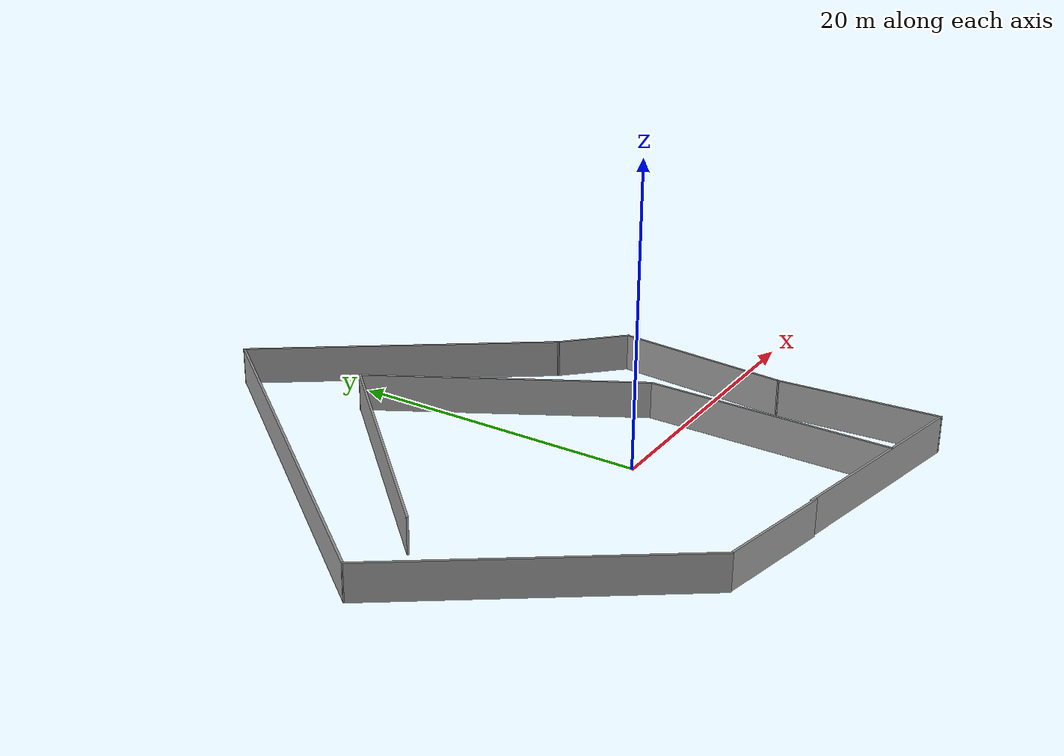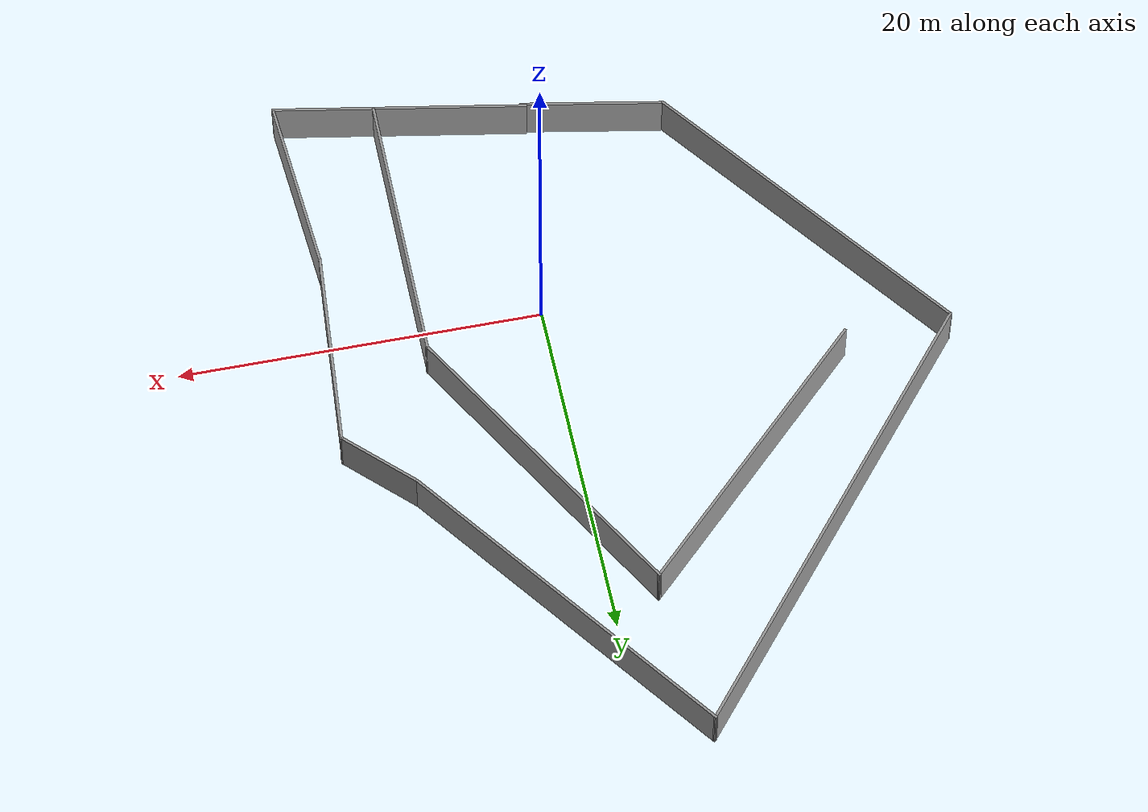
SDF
<?xml version='1.0'?>
<sdf version='1.7'>
  <model name='closed_environment'>
    <pose>-4.50244 6.41366 0 0 -0 0</pose>
    <link name='Wall_1'>
      <collision name='Wall_1_Collision'>
        <geometry>
          <box>
            <size>14.1413 0.15 2.5</size>
          </box>
        </geometry>
        <pose>0 0 1.25 0 -0 0</pose>
      </collision>
      <visual name='Wall_1_Visual'>
        <pose>0 0 1.25 0 -0 0</pose>
        <geometry>
          <box>
            <size>14.1413 0.15 2.5</size>
          </box>
        </geometry>
        <material>
          <script>
            <uri>file://media/materials/scripts/gazebo.material</uri>
            <name>Gazebo/Grey</name>
          </script>
          <ambient>1 1 1 1</ambient>
        </material>
        <meta>
          <layer>0</layer>
        </meta>
      </visual>
      <pose>9.81234 -20.0208 0 0 -0 -0.179128</pose>
    </link>
    <link name='Wall_10'>
      <collision name='Wall_10_Collision'>
        <geometry>
          <box>
            <size>18.5 0.15 2.5</size>
          </box>
        </geometry>
        <pose>0 0 1.25 0 -0 0</pose>
      </collision>
      <visual name='Wall_10_Visual'>
        <pose>0 0 1.25 0 -0 0</pose>
        <geometry>
          <box>
            <size>18.5 0.15 2.5</size>
          </box>
        </geometry>
        <material>
          <script>
            <uri>file://media/materials/scripts/gazebo.material</uri>
            <name>Gazebo/Grey</name>
          </script>
          <ambient>1 1 1 1</ambient>
        </material>
        <meta>
          <layer>0</layer>
        </meta>
      </visual>
      <pose>-4.43894 5.93116 0 0 -0 0.785398</pose>
    </link>
    <link name='Wall_11'>
      <collision name='Wall_11_Collision'>
        <geometry>
          <box>
            <size>18.9567 0.15 2.5</size>
          </box>
        </geometry>
        <pose>0 0 1.25 0 -0 0</pose>
      </collision>
      <visual name='Wall_11_Visual'>
        <pose>0 0 1.25 0 -0 0</pose>
        <geometry>
          <box>
            <size>18.9567 0.15 2.5</size>
          </box>
        </geometry>
        <material>
          <script>
            <uri>file://media/materials/scripts/gazebo.material</uri>
            <name>Gazebo/Grey</name>
          </script>
          <ambient>1 1 1 1</ambient>
        </material>
        <meta>
          <layer>0</layer>
        </meta>
      </visual>
      <pose>6.63724 4.21101 0 0 -0 -1.06104</pose>
    </link>
    <link name='Wall_12'>
      <collision name='Wall_12_Collision'>
        <geometry>
          <box>
            <size>16.3769 0.15 2.5</size>
          </box>
        </geometry>
        <pose>0 0 1.25 0 -0 0</pose>
      </collision>
      <visual name='Wall_12_Visual'>
        <pose>0 0 1.25 0 -0 0</pose>
        <geometry>
          <box>
            <size>16.3769 0.15 2.5</size>
          </box>
        </geometry>
        <material>
          <script>
            <uri>file://media/materials/scripts/gazebo.material</uri>
            <name>Gazebo/Grey</name>
          </script>
          <ambient>1 1 1 1</ambient>
        </material>
        <meta>
          <layer>0</layer>
        </meta>
      </visual>
      <pose>11.2257 -12.1103 0 0 -0 -1.5708</pose>
    </link>
    <link name='Wall_2'>
      <collision name='Wall_2_Collision'>
        <geometry>
          <box>
            <size>10.7297 0.15 2.5</size>
          </box>
        </geometry>
        <pose>0 0 1.25 0 -0 0</pose>
      </collision>
      <visual name='Wall_2_Visual'>
        <pose>0 0 1.25 0 -0 0</pose>
        <geometry>
          <box>
            <size>10.7297 0.15 2.5</size>
          </box>
        </geometry>
        <material>
          <script>
            <uri>file://media/materials/scripts/gazebo.material</uri>
            <name>Gazebo/Grey</name>
          </script>
          <ambient>1 1 1 1</ambient>
        </material>
        <meta>
          <layer>0</layer>
        </meta>
      </visual>
      <pose>16.2912 -15.9929 0 0 -0 1.6474</pose>
    </link>
    <link name='Wall_3'>
      <collision name='Wall_3_Collision'>
        <geometry>
          <box>
            <size>11.7121 0.15 2.5</size>
          </box>
        </geometry>
        <pose>0 0 1.25 0 -0 0</pose>
      </collision>
      <visual name='Wall_3_Visual'>
        <pose>0 0 1.25 0 -0 0</pose>
        <geometry>
          <box>
            <size>11.7121 0.15 2.5</size>
          </box>
        </geometry>
        <material>
          <script>
            <uri>file://media/materials/scripts/gazebo.material</uri>
            <name>Gazebo/Grey</name>
          </script>
          <ambient>1 1 1 1</ambient>
        </material>
        <meta>
          <layer>0</layer>
        </meta>
      </visual>
      <pose>16.3088 -4.95294 0 0 -0 1.49766</pose>
    </link>
    <link name='Wall_4'>
      <collision name='Wall_4_Collision'>
        <geometry>
          <box>
            <size>5 0.15 2.5</size>
          </box>
        </geometry>
        <pose>0 0 1.25 0 -0 0</pose>
      </collision>
      <visual name='Wall_4_Visual'>
        <pose>0 0 1.25 0 -0 0</pose>
        <geometry>
          <box>
            <size>5 0.15 2.5</size>
          </box>
        </geometry>
        <material>
          <script>
            <uri>file://media/materials/scripts/gazebo.material</uri>
            <name>Gazebo/Grey</name>
          </script>
          <ambient>1 1 1 1</ambient>
        </material>
        <meta>
          <layer>0</layer>
        </meta>
      </visual>
      <pose>15.0165 2.5274 0 0 -0 2.35619</pose>
    </link>
    <link name='Wall_5'>
      <collision name='Wall_5_Collision'>
        <geometry>
          <box>
            <size>21.1195 0.15 2.5</size>
          </box>
        </geometry>
        <pose>0 0 1.25 0 -0 0</pose>
      </collision>
      <visual name='Wall_5_Visual'>
        <pose>0 0 1.25 0 -0 0</pose>
        <geometry>
          <box>
            <size>21.1195 0.15 2.5</size>
          </box>
        </geometry>
        <material>
          <script>
            <uri>file://media/materials/scripts/gazebo.material</uri>
            <name>Gazebo/Grey</name>
          </script>
          <ambient>1 1 1 1</ambient>
        </material>
        <meta>
          <layer>0</layer>
        </meta>
      </visual>
      <pose>7.16805 12.7455 0 0 -0 2.1957</pose>
    </link>
    <link name='Wall_6'>
      <collision name='Wall_6_Collision'>
        <geometry>
          <box>
            <size>28.2153 0.15 2.5</size>
          </box>
        </geometry>
        <pose>0 0 1.25 0 -0 0</pose>
      </collision>
      <visual name='Wall_6_Visual'>
        <pose>0 0 1.25 0 -0 0</pose>
        <geometry>
          <box>
            <size>28.2153 0.15 2.5</size>
          </box>
        </geometry>
        <material>
          <script>
            <uri>file://media/materials/scripts/gazebo.material</uri>
            <name>Gazebo/Grey</name>
          </script>
          <ambient>1 1 1 1</ambient>
        </material>
        <meta>
          <layer>0</layer>
        </meta>
      </visual>
      <pose>-7.84874 10.3857 0 0 -0 -2.25625</pose>
    </link>
    <link name='Wall_7'>
      <collision name='Wall_7_Collision'>
        <geometry>
          <box>
            <size>21.0473 0.15 2.5</size>
          </box>
        </geometry>
        <pose>0 0 1.25 0 -0 0</pose>
      </collision>
      <visual name='Wall_7_Visual'>
        <pose>0 0 1.25 0 -0 0</pose>
        <geometry>
          <box>
            <size>21.0473 0.15 2.5</size>
          </box>
        </geometry>
        <material>
          <script>
            <uri>file://media/materials/scripts/gazebo.material</uri>
            <name>Gazebo/Grey</name>
          </script>
          <ambient>1 1 1 1</ambient>
        </material>
        <meta>
          <layer>0</layer>
        </meta>
      </visual>
      <pose>-10.6599 -8.98076 0 0 -0 -0.950699</pose>
    </link>
    <link name='Wall_8'>
      <collision name='Wall_8_Collision'>
        <geometry>
          <box>
            <size>7.88879 0.15 2.5</size>
          </box>
        </geometry>
        <pose>0 0 1.25 0 -0 0</pose>
      </collision>
      <visual name='Wall_8_Visual'>
        <pose>0 0 1.25 0 -0 0</pose>
        <geometry>
          <box>
            <size>7.88879 0.15 2.5</size>
          </box>
        </geometry>
        <material>
          <script>
            <uri>file://media/materials/scripts/gazebo.material</uri>
            <name>Gazebo/Grey</name>
          </script>
          <ambient>1 1 1 1</ambient>
        </material>
        <meta>
          <layer>0</layer>
        </meta>
      </visual>
      <pose>-0.661703 -18.2 0 0 -0 -0.186082</pose>
    </link>
    <static>1</static>
  </model>
</sdf>
